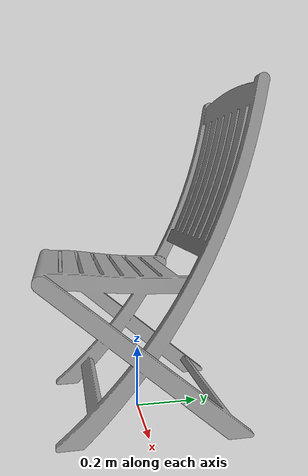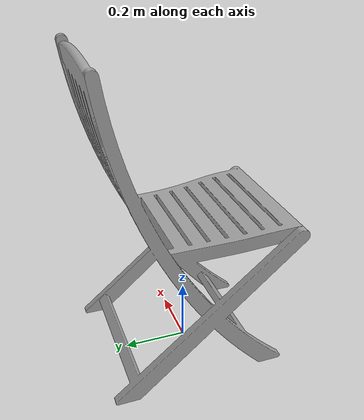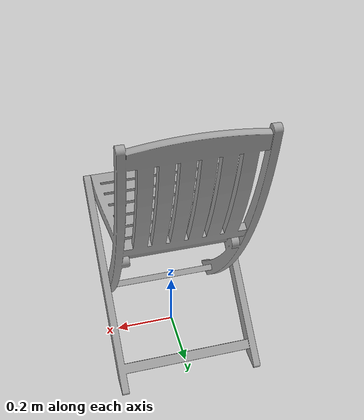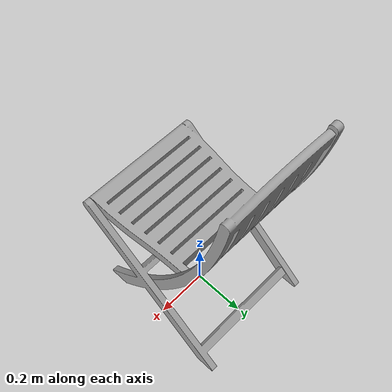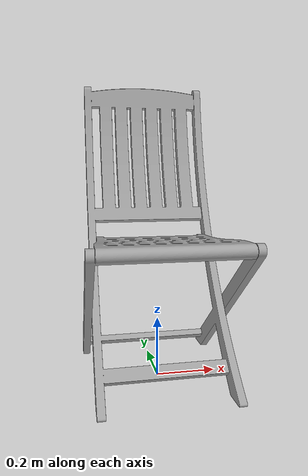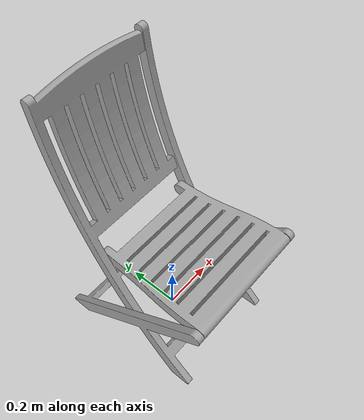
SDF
<?xml version="1.0" ?>
<sdf version="1.5">
  <model name='chair5'>
    <pose>0 0 0 0 0 0</pose>
    <static>1</static>
    <link name='body'>
      <collision name="chair5-coll">
        <pose>0 0 0 0 0 0</pose>
        <geometry>
          <mesh>
            <uri>model://chair5/meshes/chair5.dae</uri>
          </mesh>
        </geometry>
      </collision>
      <visual name='chair5'>
        <cast_shadows>1</cast_shadows>
        <geometry>
          <mesh>
            <uri>model://chair5/meshes/chair5.dae</uri>
          </mesh>
        </geometry>
      </visual>
      <velocity_decay>
        <linear>0</linear>
        <angular>0</angular>
      </velocity_decay>
      <self_collide>0</self_collide>
      <kinematic>0</kinematic>
      <gravity>1</gravity>
    </link>
  </model>

</sdf>
